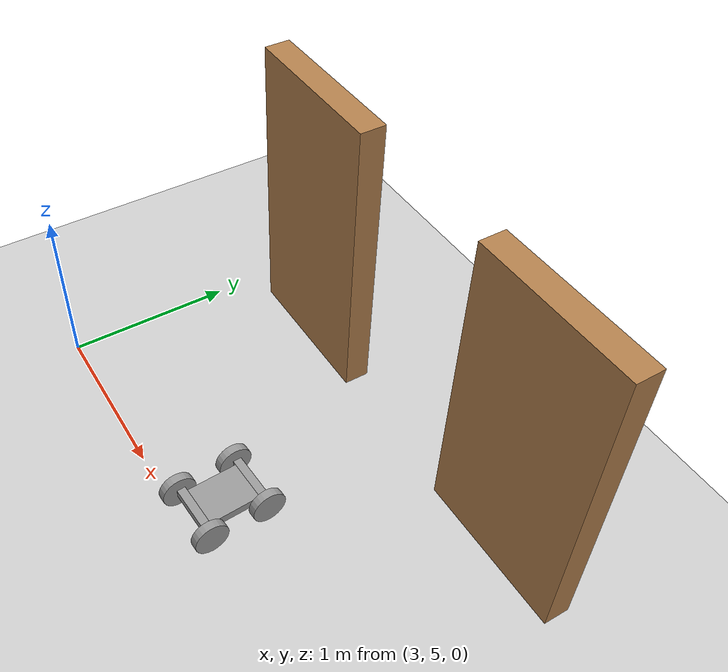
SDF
<sdf version="1.6">
 <world name="default">
  <model name="ground_plane">
   <static>1</static>
   <link name="link">
    <collision name="collision">
     <geometry><plane><normal>0 0 1</normal><size>100 100</size></plane></geometry>
     <surface>
      <contact><collide_bitmask>65535</collide_bitmask></contact>
      <friction><ode><mu>100</mu><mu2>50</mu2></ode></friction>
     </surface>
    </collision>
    <visual name="visual">
     <cast_shadows>0</cast_shadows>
     <geometry><plane><normal>0 0 1</normal><size>100 100</size></plane></geometry>
     <material>
      <script><uri>file://media/materials/scripts/gazebo.material</uri><name>Gazebo/Grey</name></script>
     </material>
    </visual>
   </link>
  </model>
  <model name="house">
   <link name="Wall_32">
    <pose>4.42504 6.35306 0 0 -0 0</pose>
    <inertial>
     <mass>1</mass>
     <inertia><ixx>1</ixx><ixy>0</ixy><ixz>0</ixz><iyy>1</iyy><iyz>0</iyz><izz>1</izz></inertia>
    </inertial>
    <visual name="Wall_32_Visual_1">
     <pose>0.916039 0 0.9 0 -0 0</pose>
     <geometry><box><size>0.917922 0.15 1.8</size></box></geometry>
     <material>
      <script><uri>file://media/materials/scripts/gazebo.material</uri><name>Gazebo/Wood</name></script>
      <ambient>1 1 1 1</ambient>
      <shader type="pixel"><normal_map>__default__</normal_map></shader>
      <diffuse>0.7 0.7 0.7 1</diffuse>
      <specular>0.01 0.01 0.01 1</specular>
      <emissive>0 0 0 1</emissive>
     </material>
     <meta><layer>0</layer></meta>
    </visual>
    <visual name="Wall_32_Visual_0">
     <pose>-0.908961 0 0.9 0 -0 0</pose>
     <geometry><box><size>0.932078 0.15 1.8</size></box></geometry>
     <material>
      <script><uri>file://media/materials/scripts/gazebo.material</uri><name>Gazebo/Wood</name></script>
      <ambient>1 1 1 1</ambient>
      <shader type="pixel"><normal_map>__default__</normal_map></shader>
      <diffuse>1 1 1 1</diffuse>
      <specular>0.2 0.2 0.2 1</specular>
      <emissive>0 0 0 1</emissive>
     </material>
     <meta><layer>0</layer></meta>
    </visual>
    <collision name="Wall_32_Collision_1">
     <pose>0.916039 0 0.9 0 -0 0</pose>
     <geometry><box><size>0.917922 0.15 1.8</size></box></geometry>
     <surface>
      <friction>
       <ode><mu>1</mu><mu2>1</mu2><fdir1>0 0 0</fdir1><slip1>0</slip1><slip2>0</slip2></ode>
       <torsional>
        <coefficient>1</coefficient>
        <patch_radius>0</patch_radius>
        <surface_radius>0</surface_radius>
        <use_patch_radius>1</use_patch_radius>
        <ode><slip>0</slip></ode>
       </torsional>
      </friction>
      <bounce><restitution_coefficient>0</restitution_coefficient><threshold>1e+06</threshold></bounce>
      <contact>
       <collide_without_contact>0</collide_without_contact>
       <collide_without_contact_bitmask>1</collide_without_contact_bitmask>
       <collide_bitmask>1</collide_bitmask>
       <ode>
        <soft_cfm>0</soft_cfm>
        <soft_erp>0.2</soft_erp>
        <kp>1e+13</kp>
        <kd>1</kd>
        <max_vel>0.01</max_vel>
        <min_depth>0</min_depth>
       </ode>
       <bullet>
        <split_impulse>1</split_impulse>
        <split_impulse_penetration_threshold>-0.01</split_impulse_penetration_threshold>
        <soft_cfm>0</soft_cfm>
        <soft_erp>0.2</soft_erp>
        <kp>1e+13</kp>
        <kd>1</kd>
       </bullet>
      </contact>
     </surface>
    </collision>
    <collision name="Wall_32_Collision_0">
     <pose>-0.908961 0 0.9 0 -0 0</pose>
     <geometry><box><size>0.932078 0.15 1.8</size></box></geometry>
     <surface>
      <friction>
       <ode><mu>1</mu><mu2>1</mu2><fdir1>0 0 0</fdir1><slip1>0</slip1><slip2>0</slip2></ode>
       <torsional>
        <coefficient>1</coefficient>
        <patch_radius>0</patch_radius>
        <surface_radius>0</surface_radius>
        <use_patch_radius>1</use_patch_radius>
        <ode><slip>0</slip></ode>
       </torsional>
      </friction>
      <bounce><restitution_coefficient>0</restitution_coefficient><threshold>1e+06</threshold></bounce>
      <contact>
       <collide_without_contact>0</collide_without_contact>
       <collide_without_contact_bitmask>1</collide_without_contact_bitmask>
       <collide_bitmask>1</collide_bitmask>
       <ode>
        <soft_cfm>0</soft_cfm>
        <soft_erp>0.2</soft_erp>
        <kp>1e+13</kp>
        <kd>1</kd>
        <max_vel>0.01</max_vel>
        <min_depth>0</min_depth>
       </ode>
       <bullet>
        <split_impulse>1</split_impulse>
        <split_impulse_penetration_threshold>-0.01</split_impulse_penetration_threshold>
        <soft_cfm>0</soft_cfm>
        <soft_erp>0.2</soft_erp>
        <kp>1e+13</kp>
        <kd>1</kd>
       </bullet>
      </contact>
     </surface>
    </collision>
   </link>
   <static>1</static>
   <pose>0.117199 0.016408 0 0 -0 0</pose>
  </model>
  <model name="four_wheel_0">
   <link name="link_0">
    <inertial>
     <mass>1</mass>
     <inertia>
      <ixx>0.166667</ixx>
      <ixy>0</ixy>
      <ixz>0</ixz>
      <iyy>0.166667</iyy>
      <iyz>0</iyz>
      <izz>0.166667</izz>
     </inertia>
    </inertial>
    <pose>-0.13125 0.047427 0.1 0 -0 0</pose>
    <visual name="visual">
     <geometry><box><size>0.05 0.3 0.05</size></box></geometry>
     <material>
      <lighting>1</lighting>
      <script><uri>file://media/materials/scripts/gazebo.material</uri><name>Gazebo/Grey</name></script>
      <shader type="pixel"><normal_map>__default__</normal_map></shader>
      <ambient>0.3 0.3 0.3 1</ambient>
      <diffuse>0.7 0.7 0.7 1</diffuse>
      <specular>0.01 0.01 0.01 1</specular>
      <emissive>0 0 0 1</emissive>
     </material>
    </visual>
    <collision name="collision">
     <geometry><box><size>0.05 0.3 0.05</size></box></geometry>
     <surface>
      <friction>
       <ode><mu>1</mu><mu2>1</mu2><fdir1>0 0 0</fdir1><slip1>0</slip1><slip2>0</slip2></ode>
       <torsional>
        <coefficient>1</coefficient>
        <patch_radius>0</patch_radius>
        <surface_radius>0</surface_radius>
        <use_patch_radius>1</use_patch_radius>
        <ode><slip>0</slip></ode>
       </torsional>
      </friction>
      <bounce><restitution_coefficient>0</restitution_coefficient><threshold>1e+06</threshold></bounce>
      <contact>
       <collide_without_contact>0</collide_without_contact>
       <collide_without_contact_bitmask>1</collide_without_contact_bitmask>
       <collide_bitmask>1</collide_bitmask>
       <ode>
        <soft_cfm>0</soft_cfm>
        <soft_erp>0.2</soft_erp>
        <kp>1e+13</kp>
        <kd>1</kd>
        <max_vel>0.01</max_vel>
        <min_depth>0</min_depth>
       </ode>
       <bullet>
        <split_impulse>1</split_impulse>
        <split_impulse_penetration_threshold>-0.01</split_impulse_penetration_threshold>
        <soft_cfm>0</soft_cfm>
        <soft_erp>0.2</soft_erp>
        <kp>1e+13</kp>
        <kd>1</kd>
       </bullet>
      </contact>
     </surface>
    </collision>
   </link>
   <link name="link_0_clone">
    <inertial>
     <mass>1</mass>
     <inertia>
      <ixx>0.166667</ixx>
      <ixy>0</ixy>
      <ixz>0</ixz>
      <iyy>0.166667</iyy>
      <iyz>0</iyz>
      <izz>0.166667</izz>
     </inertia>
    </inertial>
    <pose>0.21875 0.047427 0.1 0 -0 0</pose>
    <visual name="visual">
     <geometry><box><size>0.05 0.3 0.05</size></box></geometry>
     <material>
      <lighting>1</lighting>
      <script><uri>file://media/materials/scripts/gazebo.material</uri><name>Gazebo/Grey</name></script>
      <shader type="pixel"><normal_map>__default__</normal_map></shader>
      <ambient>0.3 0.3 0.3 1</ambient>
      <diffuse>0.7 0.7 0.7 1</diffuse>
      <specular>0.01 0.01 0.01 1</specular>
      <emissive>0 0 0 1</emissive>
     </material>
    </visual>
    <collision name="collision">
     <geometry><box><size>0.05 0.3 0.05</size></box></geometry>
     <surface>
      <friction>
       <ode><mu>1</mu><mu2>1</mu2><fdir1>0 0 0</fdir1><slip1>0</slip1><slip2>0</slip2></ode>
       <torsional>
        <coefficient>1</coefficient>
        <patch_radius>0</patch_radius>
        <surface_radius>0</surface_radius>
        <use_patch_radius>1</use_patch_radius>
        <ode><slip>0</slip></ode>
       </torsional>
      </friction>
      <bounce><restitution_coefficient>0</restitution_coefficient><threshold>1e+06</threshold></bounce>
      <contact>
       <collide_without_contact>0</collide_without_contact>
       <collide_without_contact_bitmask>1</collide_without_contact_bitmask>
       <collide_bitmask>1</collide_bitmask>
       <ode>
        <soft_cfm>0</soft_cfm>
        <soft_erp>0.2</soft_erp>
        <kp>1e+13</kp>
        <kd>1</kd>
        <max_vel>0.01</max_vel>
        <min_depth>0</min_depth>
       </ode>
       <bullet>
        <split_impulse>1</split_impulse>
        <split_impulse_penetration_threshold>-0.01</split_impulse_penetration_threshold>
        <soft_cfm>0</soft_cfm>
        <soft_erp>0.2</soft_erp>
        <kp>1e+13</kp>
        <kd>1</kd>
       </bullet>
      </contact>
     </surface>
    </collision>
   </link>
   <link name="link_0_clone_clone">
    <inertial>
     <mass>1</mass>
     <inertia>
      <ixx>0.166667</ixx>
      <ixy>0</ixy>
      <ixz>0</ixz>
      <iyy>0.166667</iyy>
      <iyz>0</iyz>
      <izz>0.166667</izz>
     </inertia>
    </inertial>
    <pose>0.04375 0.047427 0.1 0 -0 0</pose>
    <visual name="visual">
     <geometry><box><size>0.3 0.25 0.05</size></box></geometry>
     <material>
      <lighting>1</lighting>
      <script><uri>file://media/materials/scripts/gazebo.material</uri><name>Gazebo/Grey</name></script>
      <shader type="pixel"><normal_map>__default__</normal_map></shader>
      <ambient>0.3 0.3 0.3 1</ambient>
      <diffuse>0.7 0.7 0.7 1</diffuse>
      <specular>0.01 0.01 0.01 1</specular>
      <emissive>0 0 0 1</emissive>
     </material>
    </visual>
    <collision name="collision">
     <geometry><box><size>0.3 0.25 0.05</size></box></geometry>
     <surface>
      <friction>
       <ode><mu>1</mu><mu2>1</mu2><fdir1>0 0 0</fdir1><slip1>0</slip1><slip2>0</slip2></ode>
       <torsional>
        <coefficient>1</coefficient>
        <patch_radius>0</patch_radius>
        <surface_radius>0</surface_radius>
        <use_patch_radius>1</use_patch_radius>
        <ode><slip>0</slip></ode>
       </torsional>
      </friction>
      <bounce><restitution_coefficient>0</restitution_coefficient><threshold>1e+06</threshold></bounce>
      <contact>
       <collide_without_contact>0</collide_without_contact>
       <collide_without_contact_bitmask>1</collide_without_contact_bitmask>
       <collide_bitmask>1</collide_bitmask>
       <ode>
        <soft_cfm>0</soft_cfm>
        <soft_erp>0.2</soft_erp>
        <kp>1e+13</kp>
        <kd>1</kd>
        <max_vel>0.01</max_vel>
        <min_depth>0</min_depth>
       </ode>
       <bullet>
        <split_impulse>1</split_impulse>
        <split_impulse_penetration_threshold>-0.01</split_impulse_penetration_threshold>
        <soft_cfm>0</soft_cfm>
        <soft_erp>0.2</soft_erp>
        <kp>1e+13</kp>
        <kd>1</kd>
       </bullet>
      </contact>
     </surface>
    </collision>
   </link>
   <link name="link_1_clone">
    <inertial>
     <mass>1</mass>
     <inertia><ixx>0.145833</ixx><ixy>0</ixy><ixz>0</ixz><iyy>0.145833</iyy><iyz>0</iyz><izz>0.125</izz></inertia>
    </inertial>
    <pose>0.227825 -0.127583 0.100054 1.5707 -0 0</pose>
    <visual name="visual">
     <geometry><cylinder><radius>0.1</radius><length>0.05</length></cylinder></geometry>
     <material>
      <lighting>1</lighting>
      <script><uri>file://media/materials/scripts/gazebo.material</uri><name>Gazebo/Grey</name></script>
      <shader type="pixel"><normal_map>__default__</normal_map></shader>
      <ambient>0.3 0.3 0.3 1</ambient>
      <diffuse>0.7 0.7 0.7 1</diffuse>
      <specular>0.01 0.01 0.01 1</specular>
      <emissive>0 0 0 1</emissive>
     </material>
    </visual>
    <collision name="collision">
     <geometry><cylinder><radius>0.1</radius><length>0.05</length></cylinder></geometry>
     <surface>
      <friction>
       <ode><mu>1</mu><mu2>1</mu2><fdir1>0 0 0</fdir1><slip1>0</slip1><slip2>0</slip2></ode>
       <torsional>
        <coefficient>1</coefficient>
        <patch_radius>0</patch_radius>
        <surface_radius>0</surface_radius>
        <use_patch_radius>1</use_patch_radius>
        <ode><slip>0</slip></ode>
       </torsional>
      </friction>
      <bounce><restitution_coefficient>0</restitution_coefficient><threshold>1e+06</threshold></bounce>
      <contact>
       <collide_without_contact>0</collide_without_contact>
       <collide_without_contact_bitmask>1</collide_without_contact_bitmask>
       <collide_bitmask>1</collide_bitmask>
       <ode>
        <soft_cfm>0</soft_cfm>
        <soft_erp>0.2</soft_erp>
        <kp>1e+13</kp>
        <kd>1</kd>
        <max_vel>0.01</max_vel>
        <min_depth>0</min_depth>
       </ode>
       <bullet>
        <split_impulse>1</split_impulse>
        <split_impulse_penetration_threshold>-0.01</split_impulse_penetration_threshold>
        <soft_cfm>0</soft_cfm>
        <soft_erp>0.2</soft_erp>
        <kp>1e+13</kp>
        <kd>1</kd>
       </bullet>
      </contact>
     </surface>
    </collision>
   </link>
   <link name="link_1_clone_0">
    <inertial>
     <mass>1</mass>
     <inertia><ixx>0.145833</ixx><ixy>0</ixy><ixz>0</ixz><iyy>0.145833</iyy><iyz>0</iyz><izz>0.125</izz></inertia>
    </inertial>
    <pose>-0.122174 0.222437 0.100053 -1.5707 -0 -0</pose>
    <visual name="visual">
     <geometry><cylinder><radius>0.1</radius><length>0.05</length></cylinder></geometry>
     <material>
      <lighting>1</lighting>
      <script><uri>file://media/materials/scripts/gazebo.material</uri><name>Gazebo/Grey</name></script>
      <shader type="pixel"><normal_map>__default__</normal_map></shader>
      <ambient>0.3 0.3 0.3 1</ambient>
      <diffuse>0.7 0.7 0.7 1</diffuse>
      <specular>0.01 0.01 0.01 1</specular>
      <emissive>0 0 0 1</emissive>
     </material>
    </visual>
    <collision name="collision">
     <geometry><cylinder><radius>0.1</radius><length>0.05</length></cylinder></geometry>
     <surface>
      <friction>
       <ode><mu>1</mu><mu2>1</mu2><fdir1>0 0 0</fdir1><slip1>0</slip1><slip2>0</slip2></ode>
       <torsional>
        <coefficient>1</coefficient>
        <patch_radius>0</patch_radius>
        <surface_radius>0</surface_radius>
        <use_patch_radius>1</use_patch_radius>
        <ode><slip>0</slip></ode>
       </torsional>
      </friction>
      <bounce><restitution_coefficient>0</restitution_coefficient><threshold>1e+06</threshold></bounce>
      <contact>
       <collide_without_contact>0</collide_without_contact>
       <collide_without_contact_bitmask>1</collide_without_contact_bitmask>
       <collide_bitmask>1</collide_bitmask>
       <ode>
        <soft_cfm>0</soft_cfm>
        <soft_erp>0.2</soft_erp>
        <kp>1e+13</kp>
        <kd>1</kd>
        <max_vel>0.01</max_vel>
        <min_depth>0</min_depth>
       </ode>
       <bullet>
        <split_impulse>1</split_impulse>
        <split_impulse_penetration_threshold>-0.01</split_impulse_penetration_threshold>
        <soft_cfm>0</soft_cfm>
        <soft_erp>0.2</soft_erp>
        <kp>1e+13</kp>
        <kd>1</kd>
       </bullet>
      </contact>
     </surface>
    </collision>
   </link>
   <link name="link_1_clone_0_clone">
    <inertial>
     <mass>1</mass>
     <inertia><ixx>0.145833</ixx><ixy>0</ixy><ixz>0</ixz><iyy>0.145833</iyy><iyz>0</iyz><izz>0.125</izz></inertia>
    </inertial>
    <pose>0.227827 0.222437 0.100053 -1.5707 -0 -6e-06</pose>
    <visual name="visual">
     <geometry><cylinder><radius>0.1</radius><length>0.05</length></cylinder></geometry>
     <material>
      <lighting>1</lighting>
      <script><uri>file://media/materials/scripts/gazebo.material</uri><name>Gazebo/Grey</name></script>
      <shader type="pixel"><normal_map>__default__</normal_map></shader>
      <ambient>0.3 0.3 0.3 1</ambient>
      <diffuse>0.7 0.7 0.7 1</diffuse>
      <specular>0.01 0.01 0.01 1</specular>
      <emissive>0 0 0 1</emissive>
     </material>
    </visual>
    <collision name="collision">
     <geometry><cylinder><radius>0.1</radius><length>0.05</length></cylinder></geometry>
     <surface>
      <friction>
       <ode><mu>1</mu><mu2>1</mu2><fdir1>0 0 0</fdir1><slip1>0</slip1><slip2>0</slip2></ode>
       <torsional>
        <coefficient>1</coefficient>
        <patch_radius>0</patch_radius>
        <surface_radius>0</surface_radius>
        <use_patch_radius>1</use_patch_radius>
        <ode><slip>0</slip></ode>
       </torsional>
      </friction>
      <bounce><restitution_coefficient>0</restitution_coefficient><threshold>1e+06</threshold></bounce>
      <contact>
       <collide_without_contact>0</collide_without_contact>
       <collide_without_contact_bitmask>1</collide_without_contact_bitmask>
       <collide_bitmask>1</collide_bitmask>
       <ode>
        <soft_cfm>0</soft_cfm>
        <soft_erp>0.2</soft_erp>
        <kp>1e+13</kp>
        <kd>1</kd>
        <max_vel>0.01</max_vel>
        <min_depth>0</min_depth>
       </ode>
       <bullet>
        <split_impulse>1</split_impulse>
        <split_impulse_penetration_threshold>-0.01</split_impulse_penetration_threshold>
        <soft_cfm>0</soft_cfm>
        <soft_erp>0.2</soft_erp>
        <kp>1e+13</kp>
        <kd>1</kd>
       </bullet>
      </contact>
     </surface>
    </collision>
   </link>
   <link name="link_1_clone_clone">
    <inertial>
     <mass>1</mass>
     <inertia><ixx>0.145833</ixx><ixy>0</ixy><ixz>0</ixz><iyy>0.145833</iyy><iyz>0</iyz><izz>0.125</izz></inertia>
    </inertial>
    <pose>-0.122176 -0.127583 0.100055 1.5707 -0 -6e-06</pose>
    <visual name="visual">
     <geometry><cylinder><radius>0.1</radius><length>0.05</length></cylinder></geometry>
     <material>
      <lighting>1</lighting>
      <script><uri>file://media/materials/scripts/gazebo.material</uri><name>Gazebo/Grey</name></script>
      <shader type="pixel"><normal_map>__default__</normal_map></shader>
      <ambient>0.3 0.3 0.3 1</ambient>
      <diffuse>0.7 0.7 0.7 1</diffuse>
      <specular>0.01 0.01 0.01 1</specular>
      <emissive>0 0 0 1</emissive>
     </material>
    </visual>
    <collision name="collision">
     <geometry><cylinder><radius>0.1</radius><length>0.05</length></cylinder></geometry>
     <surface>
      <friction>
       <ode><mu>1</mu><mu2>1</mu2><fdir1>0 0 0</fdir1><slip1>0</slip1><slip2>0</slip2></ode>
       <torsional>
        <coefficient>1</coefficient>
        <patch_radius>0</patch_radius>
        <surface_radius>0</surface_radius>
        <use_patch_radius>1</use_patch_radius>
        <ode><slip>0</slip></ode>
       </torsional>
      </friction>
      <bounce><restitution_coefficient>0</restitution_coefficient><threshold>1e+06</threshold></bounce>
      <contact>
       <collide_without_contact>0</collide_without_contact>
       <collide_without_contact_bitmask>1</collide_without_contact_bitmask>
       <collide_bitmask>1</collide_bitmask>
       <ode>
        <soft_cfm>0</soft_cfm>
        <soft_erp>0.2</soft_erp>
        <kp>1e+13</kp>
        <kd>1</kd>
        <max_vel>0.01</max_vel>
        <min_depth>0</min_depth>
       </ode>
       <bullet>
        <split_impulse>1</split_impulse>
        <split_impulse_penetration_threshold>-0.01</split_impulse_penetration_threshold>
        <soft_cfm>0</soft_cfm>
        <soft_erp>0.2</soft_erp>
        <kp>1e+13</kp>
        <kd>1</kd>
       </bullet>
      </contact>
     </surface>
    </collision>
   </link>
   <joint name="link_0_JOINT_0_0" type="revolute">
    <parent>link_0</parent>
    <child>link_1_clone_0</child>
    <axis>
     <xyz>0 0 0.05</xyz>
     <limit>
      <lower>-1.79769e+308</lower>
      <upper>1.79769e+308</upper>
      <effort>-1</effort>
      <velocity>-1</velocity>
     </limit>
     <dynamics>
      <spring_reference>0</spring_reference>
      <spring_stiffness>0</spring_stiffness>
      <damping>0</damping>
     </dynamics>
     <use_parent_model_frame>0</use_parent_model_frame>
    </axis>
    <physics>
     <ode><limit><cfm>0</cfm><erp>0.2</erp></limit><suspension><cfm>0</cfm><erp>0.2</erp></suspension></ode>
    </physics>
   </joint>
   <joint name="link_0_JOINT_0" type="fixed">
    <parent>link_0</parent>
    <child>link_0_clone_clone</child>
    <physics>
     <ode><limit><cfm>0</cfm><erp>0.2</erp></limit><suspension><cfm>0</cfm><erp>0.2</erp></suspension></ode>
    </physics>
   </joint>
   <joint name="link_0_JOINT_1" type="revolute">
    <parent>link_0</parent>
    <child>link_1_clone_clone</child>
    <axis>
     <xyz>0 0 0.05</xyz>
     <limit>
      <lower>-1.79769e+308</lower>
      <upper>1.79769e+308</upper>
      <effort>-1</effort>
      <velocity>-1</velocity>
     </limit>
     <dynamics>
      <spring_reference>0</spring_reference>
      <spring_stiffness>0</spring_stiffness>
      <damping>0</damping>
     </dynamics>
     <use_parent_model_frame>0</use_parent_model_frame>
    </axis>
    <physics>
     <ode><limit><cfm>0</cfm><erp>0.2</erp></limit><suspension><cfm>0</cfm><erp>0.2</erp></suspension></ode>
    </physics>
   </joint>
   <joint name="link_0_clone_JOINT_1" type="fixed">
    <parent>link_0_clone</parent>
    <child>link_0_clone_clone</child>
    <physics>
     <ode><limit><cfm>0</cfm><erp>0.2</erp></limit><suspension><cfm>0</cfm><erp>0.2</erp></suspension></ode>
    </physics>
   </joint>
   <joint name="link_0_clone_JOINT_2" type="revolute">
    <parent>link_0_clone</parent>
    <child>link_1_clone_0_clone</child>
    <axis>
     <xyz>0 0 0.05</xyz>
     <limit>
      <lower>-1.79769e+308</lower>
      <upper>1.79769e+308</upper>
      <effort>-1</effort>
      <velocity>-1</velocity>
     </limit>
     <dynamics>
      <spring_reference>0</spring_reference>
      <spring_stiffness>0</spring_stiffness>
      <damping>0</damping>
     </dynamics>
     <use_parent_model_frame>0</use_parent_model_frame>
    </axis>
    <physics>
     <ode><limit><cfm>0</cfm><erp>0.2</erp></limit><suspension><cfm>0</cfm><erp>0.2</erp></suspension></ode>
    </physics>
   </joint>
   <joint name="link_0_clone_JOINT_3" type="revolute">
    <parent>link_0_clone</parent>
    <child>link_1_clone</child>
    <axis>
     <xyz>0 0 0.05</xyz>
     <limit>
      <lower>-1.79769e+308</lower>
      <upper>1.79769e+308</upper>
      <effort>-1</effort>
      <velocity>-1</velocity>
     </limit>
     <dynamics>
      <spring_reference>0</spring_reference>
      <spring_stiffness>0</spring_stiffness>
      <damping>0</damping>
     </dynamics>
     <use_parent_model_frame>0</use_parent_model_frame>
    </axis>
    <physics>
     <ode><limit><cfm>0</cfm><erp>0.2</erp></limit><suspension><cfm>0</cfm><erp>0.2</erp></suspension></ode>
    </physics>
   </joint>
   <static>0</static>
   <pose>4.46419 5.28998 -5.1e-05 2e-06 1e-06 -1.51728</pose>
  </model>
 </world>
</sdf>
